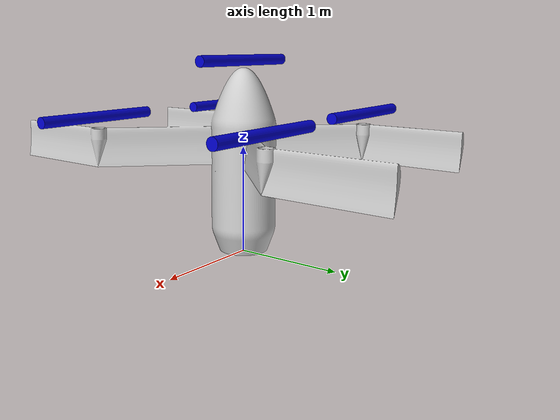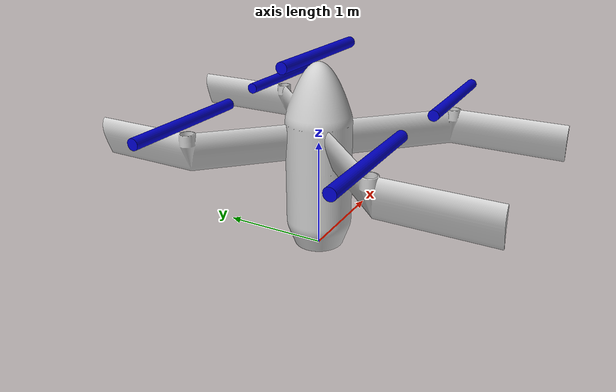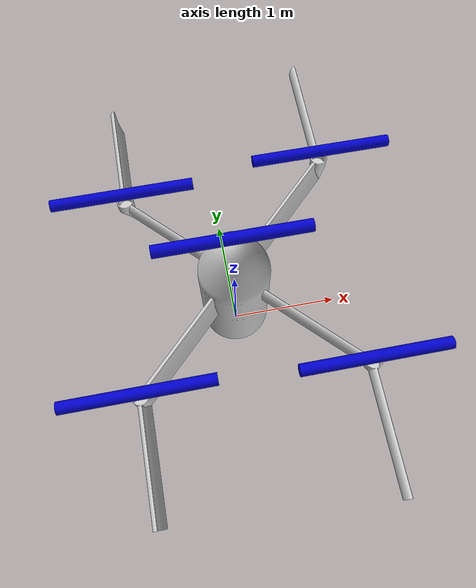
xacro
<?xml version="1.0"?>
<robot xmlns:xacro="http://www.ros.org/wiki/xacro" name="hermes">

  <xacro:arg name="mesh_base" default="package://salvos_gz/models/hermes/meshes"/>

  <xacro:include filename="hermes_core.xacro"/>
  <xacro:hermes_core mesh_base="$(arg mesh_base)"/>

  <!-- Include the macro and instantiate it -->
  <xacro:include filename="gazebo_control.xacro"/>
  <xacro:gazebo_control/>

</robot>

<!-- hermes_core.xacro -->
<robot xmlns:xacro="http://www.ros.org/wiki/xacro">

  <xacro:macro name="hermes_core" params="mesh_base">

    <!-- Materials -->
    <material name="blue">
      <color rgba="0 0 0.8 1"/>
    </material>
    <material name="black">
      <color rgba="0 0 0 1"/>
    </material>
    <material name="white">
      <color rgba="1 1 1 1"/>
    </material>
    <material name="grey">
      <color rgba="0.8 0.8 0.8 1"/>
    </material>

    <!-- Base link -->
    <link name="base_link"/>

    <joint name="dummy_joint" type="fixed">
      <parent link="base_link"/>
      <child link="frame"/>
      <origin xyz="0 0 0.8" rpy="0 -1.571 0"/>
    </joint>

    <!-- Frame -->
    <link name="frame">
      <visual>
        <origin rpy="0.0 0 0" xyz="0 0 0"/>
        <geometry>
          <mesh filename="${mesh_base}/hermes_mesh_scaled.stl"/>
        </geometry>
        <material name="grey"/>
      </visual>
      <collision>
        <origin rpy="0.0 0 0" xyz="0 0 0"/>
        <geometry>
          <mesh filename="${mesh_base}/hermes_mesh_scaled.stl"/>
        </geometry>
      </collision>
      <inertial>
        <origin xyz="0 0 0" rpy="0 0 0"/>
        <mass value="2.637"/>
        <inertia
          ixx="47.090" ixy="0.0" ixz="0.0"
          iyy="87.969" iyz="0.0"
          izz="118.937"/>
      </inertial>
    </link>

    <!-- Nose rotor -->
    <link name="nose_rotor">
      <visual>
        <origin rpy="0 0 0" xyz="0 0 0"/>
        <geometry>
          <cylinder radius="0.05" length="1.2"/>
        </geometry>
        <material name="blue"/>
      </visual>
      <collision>
        <origin rpy="0.0 0 0" xyz="0 0 0"/>
        <geometry>
          <cylinder radius="0.05" length="1.2"/>
        </geometry>
      </collision>
      <inertial>
        <origin xyz="0 0 0" rpy="0 0 0"/>
        <mass value="0.1265424"/>
        <inertia
          ixx="0.1185"  ixy="0.0"      ixz="0.0"
          iyy="0.1170"  iyz="0.009964"
          izz="0.001558"/>
      </inertial>
    </link>

    <joint name="nose_rotor_joint" type="continuous">
      <parent link="frame"/>
      <child link="nose_rotor"/>
      <origin xyz="1 0 0" rpy="0 0 0"/>
      <axis xyz="1 0 0"/>
      <limit effort="10" velocity="10000"/>
      <dynamics damping="0.002" friction="0.0005"/>
    </joint>

    <!-- Front-left rotor -->
    <link name="fl_rotor">
      <visual>
        <origin rpy="0 0 0" xyz="0 0 0"/>
        <geometry>
          <cylinder radius="0.05" length="1.2"/>
        </geometry>
        <material name="blue"/>
      </visual>
      <collision>
        <origin rpy="0.0 0 0" xyz="0 0 0"/>
        <geometry>
          <cylinder radius="0.05" length="1.2"/>
        </geometry>
      </collision>
      <inertial>
        <origin xyz="0 0 0" rpy="0 0 0"/>
        <mass value="0.1265424"/>
        <inertia
          ixx="0.1185"  ixy="0.0"      ixz="0.0"
          iyy="0.1170"  iyz="0.009964"
          izz="0.001558"/>
      </inertial>
    </link>

    <joint name="fl_rotor_joint" type="continuous">
      <parent link="frame"/>
      <child link="fl_rotor"/>
      <origin xyz="0.5 0.81 0.81" rpy="0 0 0"/>
      <axis xyz="1 0 0"/>
      <limit effort="10" velocity="10000"/>
      <dynamics damping="0.002" friction="0.0005"/>
    </joint>

    <!-- Front-right rotor -->
    <link name="fr_rotor">
      <visual>
        <origin rpy="0 0 0" xyz="0 0 0"/>
        <geometry>
          <cylinder radius="0.05" length="1.2"/>
        </geometry>
        <material name="blue"/>
      </visual>
      <collision>
        <origin rpy="0.0 0 0" xyz="0 0 0"/>
        <geometry>
          <cylinder radius="0.05" length="1.2"/>
        </geometry>
      </collision>
      <inertial>
        <origin xyz="0 0 0" rpy="0 0 0"/>
        <mass value="0.1265424"/>
        <inertia
          ixx="0.1185"  ixy="0.0"      ixz="0.0"
          iyy="0.1170"  iyz="0.009964"
          izz="0.001558"/>
      </inertial>
    </link>

    <joint name="fr_rotor_joint" type="continuous">
      <parent link="frame"/>
      <child link="fr_rotor"/>
      <origin xyz="0.5 -0.88 0.88" rpy="0 0 0"/>
      <axis xyz="1 0 0"/>
      <limit effort="10" velocity="10000"/>
      <dynamics damping="0.002" friction="0.0005"/>
    </joint>

    <!-- Rear-left rotor -->
    <link name="rl_rotor">
      <visual>
        <origin rpy="0 0 0" xyz="0 0 0"/>
        <geometry>
          <cylinder radius="0.05" length="1.2"/>
        </geometry>
        <material name="blue"/>
      </visual>
      <collision>
        <origin rpy="0.0 0 0" xyz="0 0 0"/>
        <geometry>
          <cylinder radius="0.05" length="1.2"/>
        </geometry>
      </collision>
      <inertial>
        <origin xyz="0 0 0" rpy="0 0 0"/>
        <mass value="0.1265424"/>
        <inertia
          ixx="0.1185"  ixy="0.0"      ixz="0.0"
          iyy="0.1170"  iyz="0.009964"
          izz="0.001558"/>
      </inertial>
    </link>

    <joint name="rl_rotor_joint" type="continuous">
      <parent link="frame"/>
      <child link="rl_rotor"/>
      <origin xyz="0.5 -0.93 -0.93" rpy="0 0 0"/>
      <axis xyz="1 0 0"/>
      <limit effort="10" velocity="10000"/>
      <dynamics damping="0.002" friction="0.0005"/>
    </joint>

    <!-- Rear-right rotor -->
    <link name="rr_rotor">
      <visual>
        <origin rpy="0 0 0" xyz="0 0 0"/>
        <geometry>
          <cylinder radius="0.05" length="1.2"/>
        </geometry>
        <material name="blue"/>
      </visual>
      <collision>
        <origin rpy="0.0 0 0" xyz="0 0 0"/>
        <geometry>
          <cylinder radius="0.05" length="1.2"/>
        </geometry>
      </collision>
      <inertial>
        <origin xyz="0 0 0" rpy="0 0 0"/>
        <mass value="0.1265424"/>
        <inertia
          ixx="0.1185"  ixy="0.0"      ixz="0.0"
          iyy="0.1170"  iyz="0.009964"
          izz="0.001558"/>
      </inertial>
    </link>

    <joint name="rr_rotor_joint" type="continuous">
      <parent link="frame"/>
      <child link="rr_rotor"/>
      <origin xyz="0.5 0.93 -0.93" rpy="0 0 0"/>
      <axis xyz="1 0 0"/>
      <limit effort="10" velocity="10000"/>
      <dynamics damping="0.002" friction="0.0005"/>
    </joint>

  </xacro:macro>

</robot>
